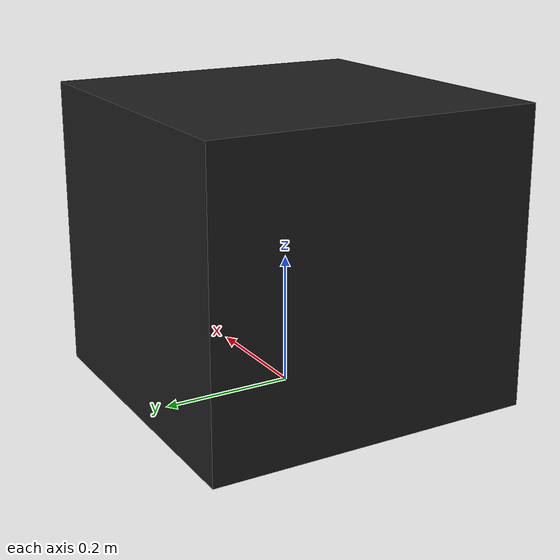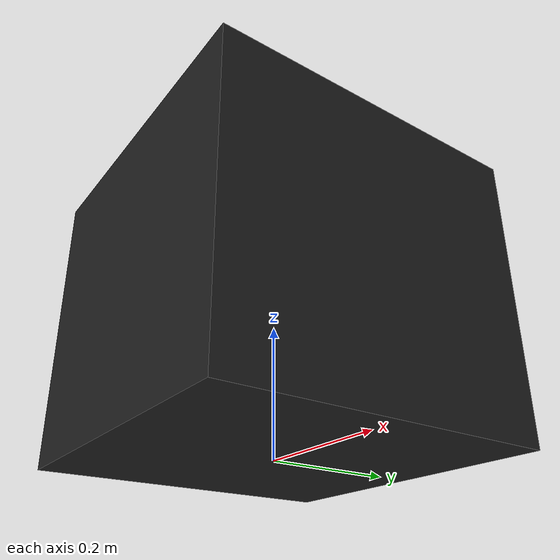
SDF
<?xml version='1.0'?>
<sdf version="1.4">
<model name="apc_order_bin_stage">
  <pose>0 0 0.225 0 0 0</pose>
  <link name="link">
    <inertial>
      <mass>15.0</mass>
      <inertia> <!-- interias are tricky to compute -->
        <!-- http://answers.gazebosim.org/question/4372/the-inertia-matrix-explained/ -->
        <ixx>7</ixx>       <!-- for a box: ixx = 0.083 * mass * (y*y + z*z) -->
        <ixy>0.0</ixy>         <!-- for a box: ixy = 0 -->
        <ixz>0.0</ixz>         <!-- for a box: ixz = 0 -->
        <iyy>7</iyy>       <!-- for a box: iyy = 0.083 * mass * (x*x + z*z) -->
        <iyz>0.0</iyz>         <!-- for a box: iyz = 0 -->
        <izz>7</izz>       <!-- for a box: izz = 0.083 * mass * (x*x + y*y) -->
      </inertia>
    </inertial>
    <collision name="collision">
      <geometry>
        <box>
          <size>0.5 0.5 0.45</size>
        </box>
      </geometry>
    </collision>
    <visual name="visual">
      <geometry>
        <box>
          <size>0.5 0.5 0.45</size>
        </box>
      </geometry>
      <material>
        <script>
          <name>Gazebo/Black</name>
          <uri>__default__</uri>
        </script>
      </material>
    </visual>
  </link>
</model>
</sdf>
